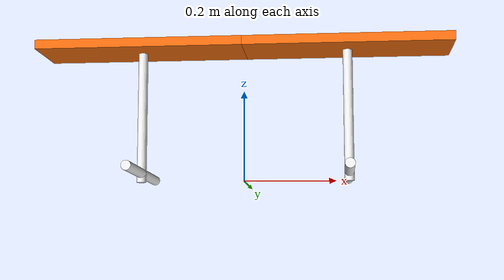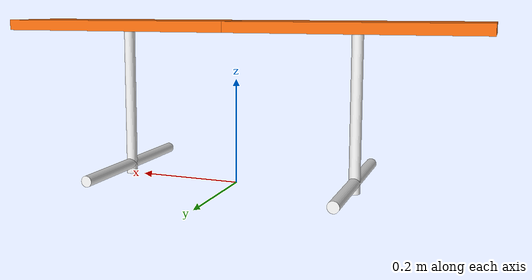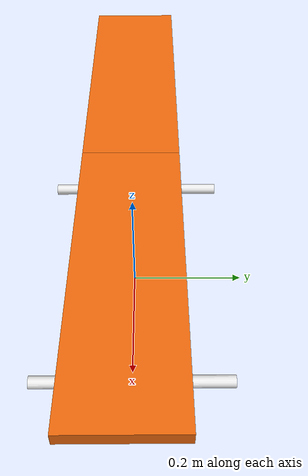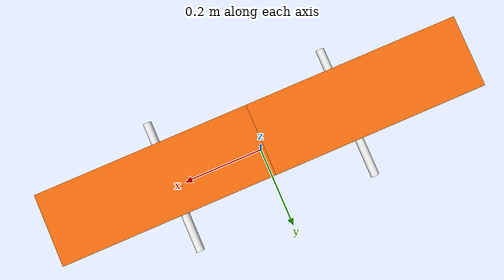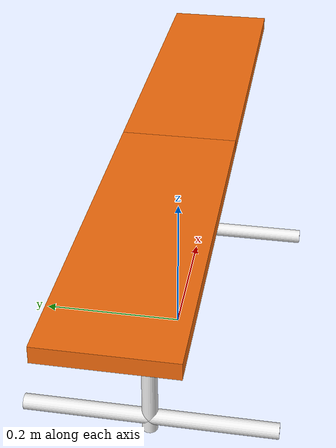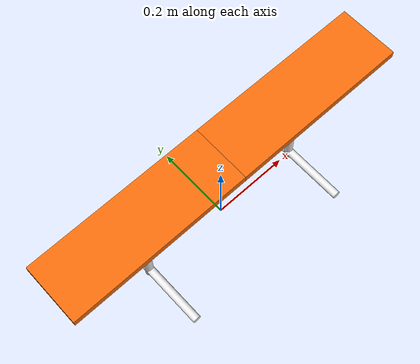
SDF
<?xml version="1.0"?>
<sdf version="1.9">
  <model name="robosub_path_marker">
    <static>true</static>
    <plugin filename="gz-sim-label-system" name="gz::sim::systems::Label">
      <label>19</label>
    </plugin>
    <link name="segment_0">
      <pose>-0.2286 0 0.3 0 0 0</pose>
      <inertial>
        <pose>0 0 0 0 0 0</pose>
        <mass>0.6</mass>
        <inertia>
          <ixx>0.00118129</ixx><ixy>0</ixy><ixz>0</ixz>
          <iyy>0.0104716</iyy><iyz>0</iyz>
          <izz>0.0116129</izz>
        </inertia>
      </inertial>
      <visual name="segment_0_visual">
        <pose>0 0 0 0 0 0</pose>
        <geometry><box><size>0.4572 0.1524 0.02</size></box></geometry>
        <material>
          <ambient>0.95 0.42 0.05 1</ambient>
          <diffuse>0.95 0.42 0.05 1</diffuse>
          <specular>0.2 0.2 0.2 1</specular>
          <emissive>0.304 0.1344 0.016 1</emissive>
        </material>
      </visual>
      <collision name="segment_0_collision">
        <pose>0 0 0 0 0 0</pose>
        <geometry><box><size>0.4572 0.1524 0.02</size></box></geometry>
      </collision>
    </link>
    <link name="stand_0">
      <pose>-0.2286 0 0.15 0 0 0</pose>
      <inertial>
        <pose>0 0 0 0 0 0</pose>
        <mass>0.4</mass>
        <inertia>
          <ixx>0.00301103</ixx><ixy>0</ixy><ixz>0</ixz>
          <iyy>0.00301103</iyy><iyz>0</iyz>
          <izz>2.205e-05</izz>
        </inertia>
      </inertial>
      <visual name="stand_0_visual">
        <pose>0 0 0 0 0 0</pose>
        <geometry><cylinder><radius>0.0105</radius><length>0.3</length></cylinder></geometry>
        <material>
          <ambient>0.92 0.92 0.92 1</ambient>
          <diffuse>0.92 0.92 0.92 1</diffuse>
          <specular>0.55 0.55 0.55 1</specular>
          <emissive>0.258 0.258 0.258 1</emissive>
          <pbr>
            <metal>
              <albedo_map>model://robosub_textures/albedo_pvc.png</albedo_map>
              <metalness>0.0</metalness>
              <roughness_map>model://robosub_textures/rough_pvc.png</roughness_map>
              <normal_map>model://robosub_textures/norm_pvc.png</normal_map>
            </metal>
          </pbr>
        </material>
      </visual>
      <collision name="stand_0_collision">
        <pose>0 0 0 0 0 0</pose>
        <geometry><cylinder><radius>0.0105</radius><length>0.3</length></cylinder></geometry>
      </collision>
    </link>
    <link name="foot_0">
      <pose>-0.2286 0 0.02 1.5708 0 0</pose>
      <inertial>
        <pose>0 0 0 0 0 0</pose>
        <mass>0.4</mass>
        <inertia>
          <ixx>0.00375811</ixx><ixy>0</ixy><ixz>0</ixz>
          <iyy>0.00375811</iyy><iyz>0</iyz>
          <izz>2.205e-05</izz>
        </inertia>
      </inertial>
      <visual name="foot_0_visual">
        <pose>0 0 0 0 0 0</pose>
        <geometry><cylinder><radius>0.0105</radius><length>0.33528</length></cylinder></geometry>
        <material>
          <ambient>0.92 0.92 0.92 1</ambient>
          <diffuse>0.92 0.92 0.92 1</diffuse>
          <specular>0.55 0.55 0.55 1</specular>
          <emissive>0.258 0.258 0.258 1</emissive>
          <pbr>
            <metal>
              <albedo_map>model://robosub_textures/albedo_pvc.png</albedo_map>
              <metalness>0.0</metalness>
              <roughness_map>model://robosub_textures/rough_pvc.png</roughness_map>
              <normal_map>model://robosub_textures/norm_pvc.png</normal_map>
            </metal>
          </pbr>
        </material>
      </visual>
      <collision name="foot_0_collision">
        <pose>0 0 0 0 0 0</pose>
        <geometry><cylinder><radius>0.0105</radius><length>0.33528</length></cylinder></geometry>
      </collision>
    </link>
    <link name="segment_1">
      <pose>0.2286 0 0.3 0 0 0</pose>
      <inertial>
        <pose>0 0 0 0 0 0</pose>
        <mass>0.6</mass>
        <inertia>
          <ixx>0.00118129</ixx><ixy>0</ixy><ixz>0</ixz>
          <iyy>0.0104716</iyy><iyz>0</iyz>
          <izz>0.0116129</izz>
        </inertia>
      </inertial>
      <visual name="segment_1_visual">
        <pose>0 0 0 0 0 0</pose>
        <geometry><box><size>0.4572 0.1524 0.02</size></box></geometry>
        <material>
          <ambient>0.95 0.42 0.05 1</ambient>
          <diffuse>0.95 0.42 0.05 1</diffuse>
          <specular>0.2 0.2 0.2 1</specular>
          <emissive>0.304 0.1344 0.016 1</emissive>
        </material>
      </visual>
      <collision name="segment_1_collision">
        <pose>0 0 0 0 0 0</pose>
        <geometry><box><size>0.4572 0.1524 0.02</size></box></geometry>
      </collision>
    </link>
    <link name="stand_1">
      <pose>0.2286 0 0.15 0 0 0</pose>
      <inertial>
        <pose>0 0 0 0 0 0</pose>
        <mass>0.4</mass>
        <inertia>
          <ixx>0.00301103</ixx><ixy>0</ixy><ixz>0</ixz>
          <iyy>0.00301103</iyy><iyz>0</iyz>
          <izz>2.205e-05</izz>
        </inertia>
      </inertial>
      <visual name="stand_1_visual">
        <pose>0 0 0 0 0 0</pose>
        <geometry><cylinder><radius>0.0105</radius><length>0.3</length></cylinder></geometry>
        <material>
          <ambient>0.92 0.92 0.92 1</ambient>
          <diffuse>0.92 0.92 0.92 1</diffuse>
          <specular>0.55 0.55 0.55 1</specular>
          <emissive>0.258 0.258 0.258 1</emissive>
          <pbr>
            <metal>
              <albedo_map>model://robosub_textures/albedo_pvc.png</albedo_map>
              <metalness>0.0</metalness>
              <roughness_map>model://robosub_textures/rough_pvc.png</roughness_map>
              <normal_map>model://robosub_textures/norm_pvc.png</normal_map>
            </metal>
          </pbr>
        </material>
      </visual>
      <collision name="stand_1_collision">
        <pose>0 0 0 0 0 0</pose>
        <geometry><cylinder><radius>0.0105</radius><length>0.3</length></cylinder></geometry>
      </collision>
    </link>
    <link name="foot_1">
      <pose>0.2286 0 0.02 1.5708 0 0</pose>
      <inertial>
        <pose>0 0 0 0 0 0</pose>
        <mass>0.4</mass>
        <inertia>
          <ixx>0.00375811</ixx><ixy>0</ixy><ixz>0</ixz>
          <iyy>0.00375811</iyy><iyz>0</iyz>
          <izz>2.205e-05</izz>
        </inertia>
      </inertial>
      <visual name="foot_1_visual">
        <pose>0 0 0 0 0 0</pose>
        <geometry><cylinder><radius>0.0105</radius><length>0.33528</length></cylinder></geometry>
        <material>
          <ambient>0.92 0.92 0.92 1</ambient>
          <diffuse>0.92 0.92 0.92 1</diffuse>
          <specular>0.55 0.55 0.55 1</specular>
          <emissive>0.258 0.258 0.258 1</emissive>
          <pbr>
            <metal>
              <albedo_map>model://robosub_textures/albedo_pvc.png</albedo_map>
              <metalness>0.0</metalness>
              <roughness_map>model://robosub_textures/rough_pvc.png</roughness_map>
              <normal_map>model://robosub_textures/norm_pvc.png</normal_map>
            </metal>
          </pbr>
        </material>
      </visual>
      <collision name="foot_1_collision">
        <pose>0 0 0 0 0 0</pose>
        <geometry><cylinder><radius>0.0105</radius><length>0.33528</length></cylinder></geometry>
      </collision>
    </link>
  </model>
</sdf>
